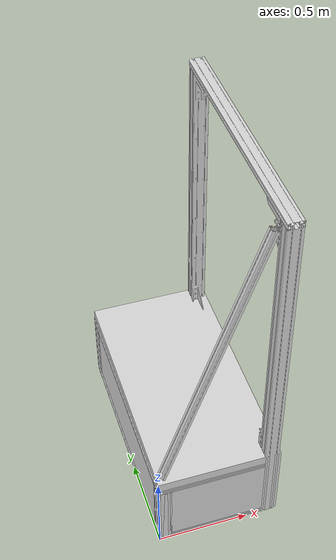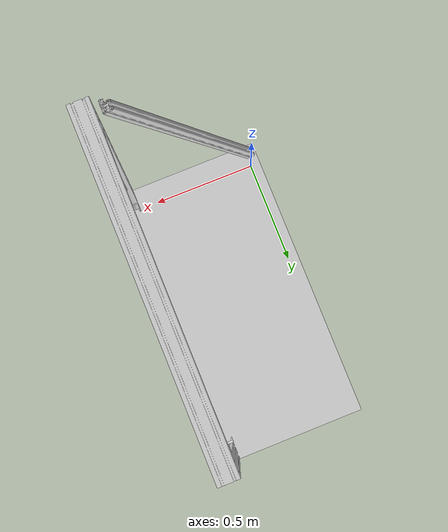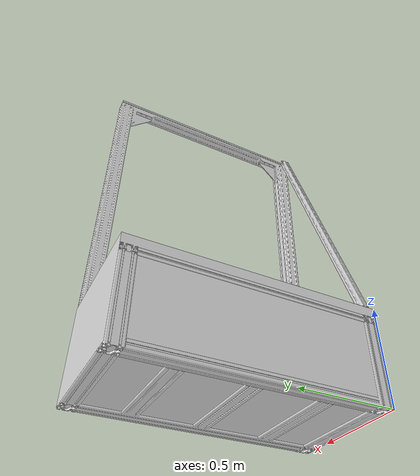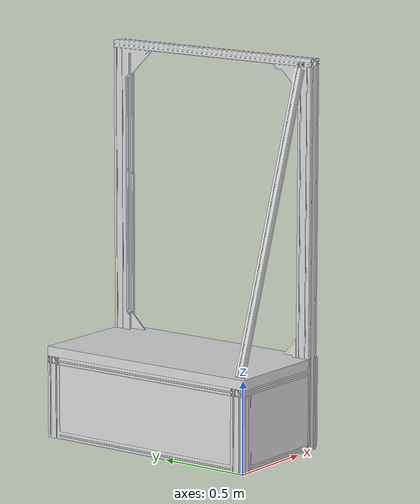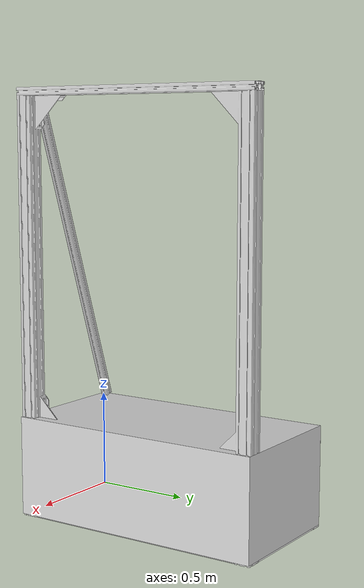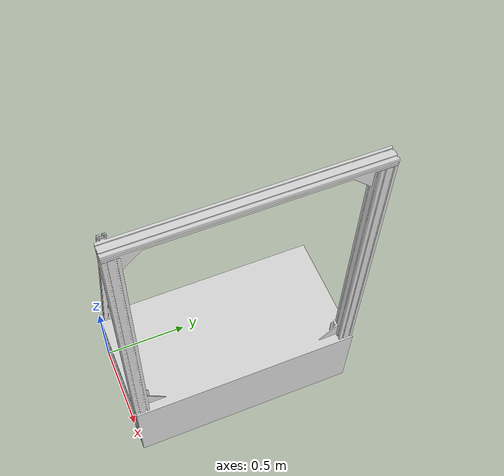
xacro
<?xml version="1.0"?>
<robot xmlns:xacro="http://wiki.ros.org/xacro" name="hatch_frame">
  <xacro:arg name="prefix" default=""/>

  <xacro:include filename="$(find hatch_accessories)/urdf/colors.xacro"/>
  <xacro:include filename="$(find hatch_accessories)/urdf/hatch_frame.xacro"/>

  <link name="world"/>

  <xacro:hatch_frame prefix="$(arg prefix)" parent="world">
    <origin xyz="0 0 0" rpy="0 0 0"/>
  </xacro:hatch_frame>

</robot>

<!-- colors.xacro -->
<robot xmlns:xacro="http://wiki.ros.org/xacro" name="trainer_side">

  <material name="red">
    <color rgba="1 0 0 1"/>
  </material>

  <material name="green">
    <color rgba="0 1 0 1"/>
  </material>

  <material name="blue">
    <color rgba="0 0 1 1"/>
  </material>

  <material name="gray">
    <color rgba="0.85 0.85 0.85 1"/>
  </material>

  <material name="black">
    <color rgba="0 0 0 1"/>
  </material>

  <material name="white">
    <color rgba="1 1 1 1"/>
  </material>

</robot>

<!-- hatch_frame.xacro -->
<robot xmlns:xacro="http://wiki.ros.org/xacro">

  <xacro:macro name="hatch_frame" params="
    prefix:=''
    parent:=''
    *origin">

    <joint name="${prefix}hatch_frame_base_joint" type="fixed">
      <parent link="${parent}"/>
      <child link="${prefix}hatch_frame"/>
      <xacro:insert_block name="origin"/>
    </joint>

    <link name="${prefix}hatch_frame">
      <visual>
        <origin xyz="0.0 0.0 0.0" rpy="0 0 0"/>
        <geometry>
          <mesh filename="package://hatch_accessories/meshes/visual/ivr_hatch_frame_no_left.stl"/>
        </geometry>
        <material name="gray"/>
      </visual>
    </link>

    <joint name="${prefix}hatch_frame_joint" type="fixed">
      <parent link="${prefix}hatch_frame"/>
      <child link="${prefix}hatch_bottom"/>
      <origin xyz="0.0 0.0 0.0" rpy="0 0 0"/>
    </joint>

    <link name="${prefix}hatch_bottom">
      <!--TODO set proper inertia-->
      <inertial>
        <origin rpy="0 0 0" xyz="0.0 0.0 0.0"/>
        <mass value="0.0"/>
        <inertia ixx="0.0" ixy="0.0" ixz="0.0" iyy="0.0" iyz="0.0" izz="0.0"/>
      </inertial>
      <collision>
        <origin xyz="${0.675/2} ${1.307/2} ${0.04/2}" rpy="0 0 0"/>
        <geometry>
          <box size="0.675 1.307 0.04"/>
        </geometry>
        <material name="red"/>
      </collision>
    </link>

    <joint name="${prefix}hatch_bottom_back" type="fixed">
      <parent link="${prefix}hatch_bottom"/>
      <child link="${prefix}hatch_back"/>
      <origin xyz="0.0 0.0 0.0" rpy="0 0 0"/>
    </joint>

    <link name="${prefix}hatch_back">
      <collision>
        <origin xyz="${0.1/2} ${1.307/2} ${0.4953/2}" rpy="0 0 0"/>
        <geometry>
          <box size="0.1 1.307 0.4953"/>
        </geometry>
        <material name="red"/>
      </collision>
    </link>

    <joint name="${prefix}hatch_bottom_front" type="fixed">
      <parent link="${prefix}hatch_bottom"/>
      <child link="${prefix}hatch_front"/>
      <origin xyz="0.578 0.0 0.0" rpy="0 0 0"/>
    </joint>

    <link name="${prefix}hatch_front">
      <collision>
        <origin xyz="${0.1/2} ${1.307/2} ${0.4953/2}" rpy="0 0 0"/>
        <geometry>
          <box size="0.1 1.307 0.4953"/>
        </geometry>
        <material name="red"/>
      </collision>
    </link>

    <joint name="${prefix}hatch_frame_front_bottom_joint" type="fixed">
      <parent link="${prefix}hatch_frame"/>
      <child link="${prefix}hatch_frame_front_bottom"/>
      <origin xyz="0.67 0.0 0.0" rpy="0 0 0"/>
    </joint>

    <link name="${prefix}hatch_frame_front_bottom"/>

    <joint name="${prefix}hatch_bottom_left" type="fixed">
      <parent link="${prefix}hatch_bottom"/>
      <child link="${prefix}hatch_left"/>
      <origin xyz="0.0 -0.01 0.0" rpy="0 0 0"/>
    </joint>

    <link name="${prefix}hatch_left">
      <collision>
        <origin xyz="${0.675/2} ${0.1/2} ${2.1082/2}" rpy="0 0 0"/>
        <geometry>
          <box size="0.675 0.1 2.1082"/>
        </geometry>
        <material name="red"/>
      </collision>
    </link>

    <joint name="${prefix}hatch_bottom_right" type="fixed">
      <parent link="${prefix}hatch_bottom"/>
      <child link="${prefix}hatch_right"/>
      <origin xyz="0.0 1.22 0.0" rpy="0 0 0"/>
    </joint>

    <link name="${prefix}hatch_right">
      <collision>
        <origin xyz="${0.675/2} ${0.1/2} ${0.4953/2}" rpy="0 0 0"/>
        <geometry>
          <box size="0.675 0.1 0.4953"/>
        </geometry>
        <material name="red"/>
      </collision>
      <collision>
        <origin xyz="${1.307/2 - 0.1/4} ${0.1/2} ${2.1082/2}" rpy="0 0 0"/>
        <geometry>
          <box size="0.1 0.1 2.1082"/>
        </geometry>
        <material name="red"/>
      </collision>
    </link>

    <joint name="${prefix}hatch_bottom_top" type="fixed">
      <parent link="${prefix}hatch_bottom"/>
      <child link="${prefix}hatch_top"/>
      <origin xyz="0.589 0.0 1.913" rpy="0 0 0"/>
    </joint>

    <link name="${prefix}hatch_top">
      <collision>
        <origin xyz="${0.1/2} ${1.307/2} ${0.197/2}" rpy="0 0 0"/>
        <geometry>
          <box size="0.1 1.307 0.197"/>
        </geometry>
        <material name="red"/>
      </collision>
    </link>

    <joint name="${prefix}hatch_frame_front_top_joint" type="fixed">
      <parent link="${prefix}hatch_frame"/>
      <child link="${prefix}hatch_frame_front_top"/>
      <origin xyz="0.67 0.0 2.111" rpy="0 0 0"/>
    </joint>

    <link name="${prefix}hatch_frame_front_top"/>

    <!--This is for when there is a bench at the level of the bottom of the hatch opening.-->
    <!-- TODO add if statement -->
    <joint name="${prefix}hatch_frame_bench_joint" type="fixed">
      <parent link="${prefix}hatch_frame"/>
      <child link="${prefix}hatch_bench"/>
      <origin xyz="0.0 0.0 0.0" rpy="0 0 0"/>
    </joint>

    <link name="${prefix}hatch_bench">
      <visual>
        <origin xyz="${0.675/2} ${1.307/2} ${0.4953/2 + 0.01}" rpy="0 0 0"/>
        <geometry>
          <box size="0.675 1.307 0.4953"/>
        </geometry>
        <material name="gray"/>
      </visual>
      <collision>
        <origin xyz="${0.675/2} ${1.307/2} ${0.4953/2 + 0.01}" rpy="0 0 0"/>
        <geometry>
          <box size="0.675 1.307 0.4953"/>
        </geometry>
        <material name="gray"/>
      </collision>
    </link>

  </xacro:macro>
</robot>
